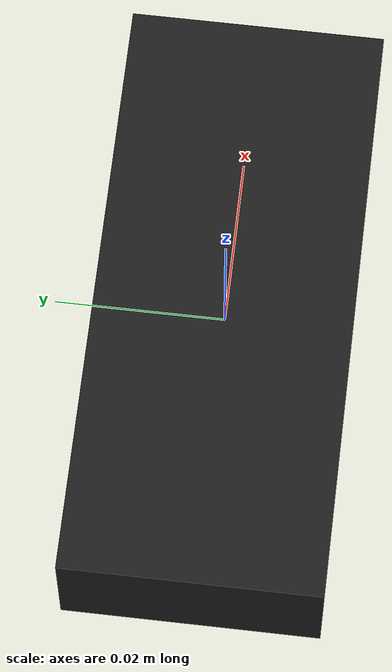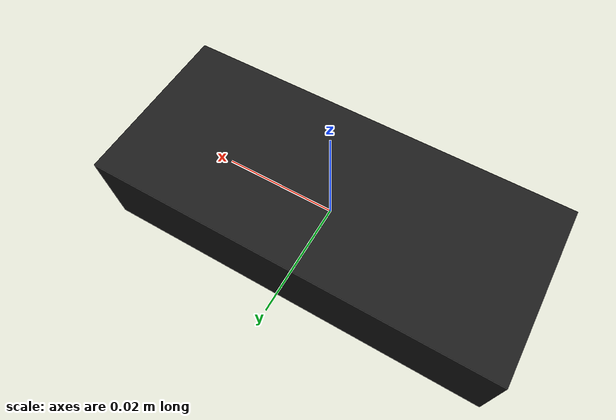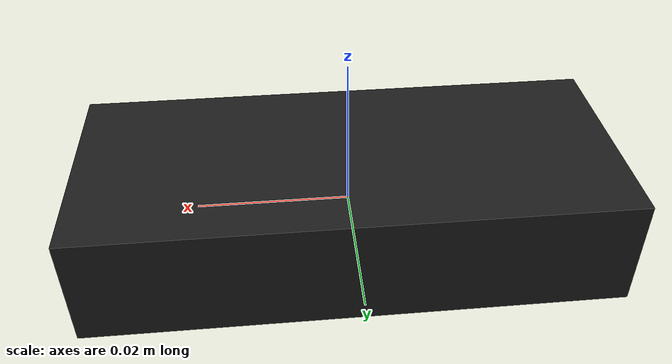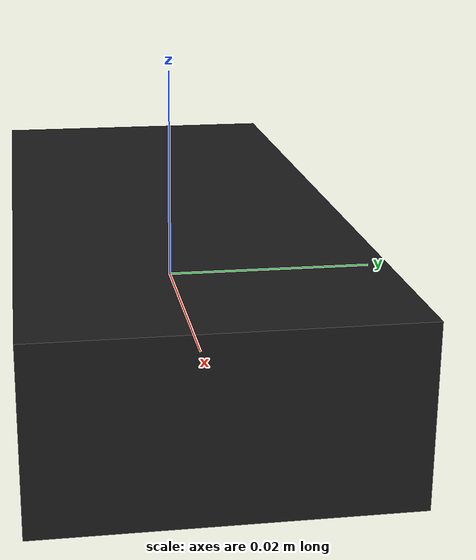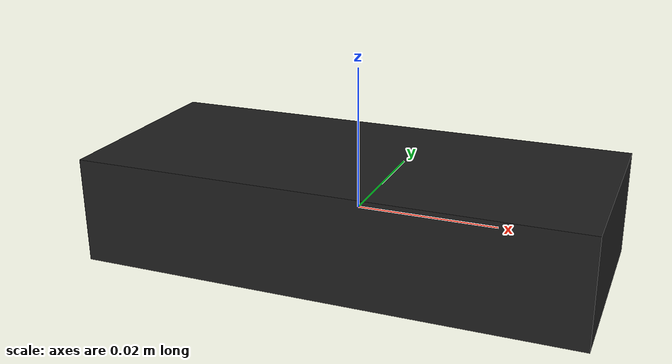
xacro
<robot name="camera"
    xmlns:xacro="https://www.ros.org/wiki/xacro">

    <xacro:include filename="$(find ros_basics_models)/urdf/utils/inertia.xacro" />

    <xacro:property name="border_thickness" value="0.028"/>
    <xacro:property name="z_mount" value="0.7"/>
    <xacro:property name="height" value="0.07"/>
    <xacro:property name="width" value="0.015"/>
    <xacro:property name="thickness" value="0.03"/>

    <link name="world" />
    <joint name="world_joint" type="fixed">
        <parent link="world"/>
        <child link="logi_c615"/>
    </joint>
    <link name="logi_c615">

        <visual>
            <origin xyz="0 0 0" rpy="0 1.57 0"/>
            <geometry>
                <box size="${width} ${thickness} ${height}"/>
            </geometry>
        </visual>
        <collision>
            <origin xyz="0 0 0" rpy="1.57 0 0"/>
            <geometry>
                <box size="${width} ${thickness} ${height}"/>
            </geometry>
        </collision>
        <inertial>
            <mass value="${mass}"/>
            <xacro:box_inertia mass="${mass}" x="1" y="1" z="1" />
        </inertial>
    </link>

    <gazebo reference="logi_c615">
        <sensor type="camera" name="top_camera">
            <pose>0 0 0 0 1.57 1.57</pose>
            <update_rate>30.0</update_rate>
            <camera name="top">
                <horizontal_fov>1.02</horizontal_fov>
                <image>
                    <width>640</width>
                    <height>480</height>
                    <format>R8G8B8</format>
                </image>
                <clip>
                    <near>0.02</near>
                    <far>300</far>
                </clip>
                <noise>
                    <type>gaussian</type>
                    <mean>0.0</mean>
                    <stddev>0.007</stddev>
                </noise>
            </camera>
            <plugin name="camera_controller" filename="libgazebo_ros_camera.so">
                <alwaysOn>true</alwaysOn>
                <updateRate>0.0</updateRate>
                <cameraName>robot_view</cameraName>
                <imageTopicName>image_raw</imageTopicName>
                <cameraInfoTopicName>logi_c615</cameraInfoTopicName>
                <frameName>camera_link</frameName>
                <hackBaseline>0.07</hackBaseline>
                <distortionK1>0.0</distortionK1>
                <distortionK2>0.0</distortionK2>
                <distortionK3>0.0</distortionK3>
                <distortionT1>0.0</distortionT1>
                <distortionT2>0.0</distortionT2>
            </plugin>
        </sensor>

        <material>Gazebo/Black</material>
    </gazebo>

</robot>

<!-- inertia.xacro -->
<robot xmlns:xacro="https://www.ros.org/wiki/xacro">

	<xacro:property name="mass" value="1"/>
	<xacro:property name="r" value="1"/>
	<xacro:property name="h" value="1"/>
	<xacro:property name="x" value="0"/>
	<xacro:property name="y" value="0"/>
	<xacro:property name="z" value="0"/>

	<xacro:macro name="cylinder_inertia" params="mass r h">
		<inertia ixx="${mass*(3*r*r+h*h)/12}" ixy="0" ixz="0" iyy="${mass*(3*r*r+h*h)/12}" iyz="0" izz="${mass*r*r/2}" />
	</xacro:macro>

	<xacro:macro name="box_inertia" params="mass x y z">
		<inertia ixx="${mass*(y*y+z*z)/12}" ixy="0" ixz="0" iyy="${mass*(x*x+z*z)/12}" iyz="0" izz="${mass*(x*x+z*z)/12}" />
	</xacro:macro>

	<xacro:macro name="sphere_inertia" params="mass r">
		<inertia ixx="${2*mass*r*r/5}" ixy="0" ixz="0" iyy="${2*mass*r*r/5}" iyz="0" izz="${2*mass*r*r/5}" />
	</xacro:macro>

</robot>
